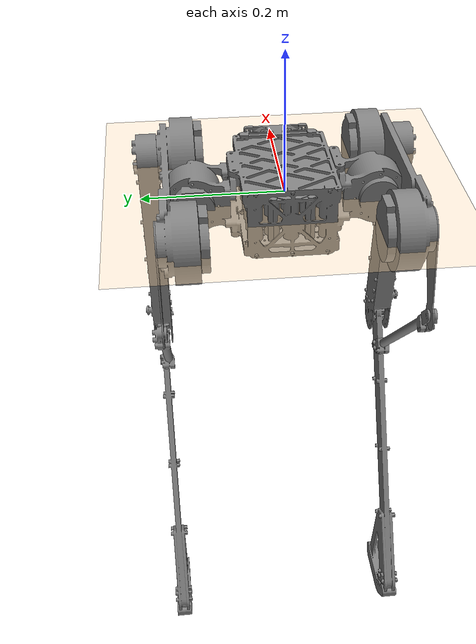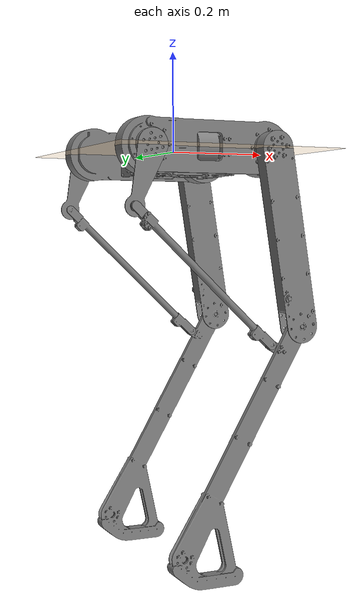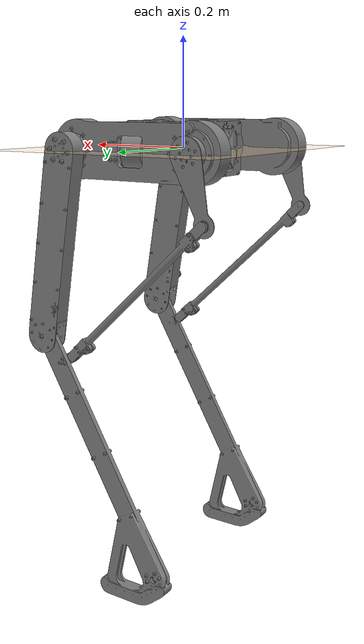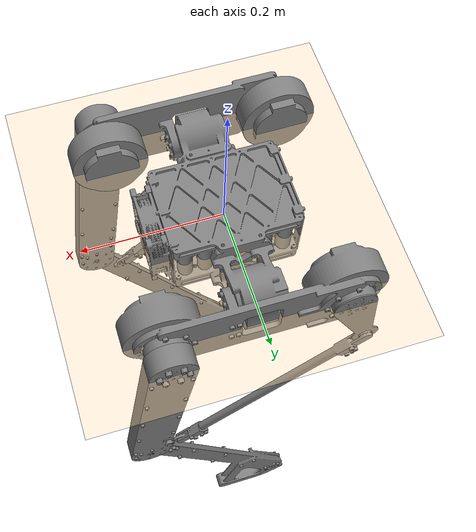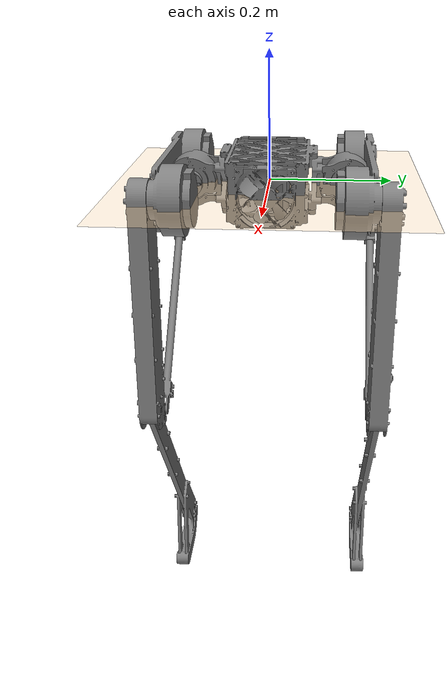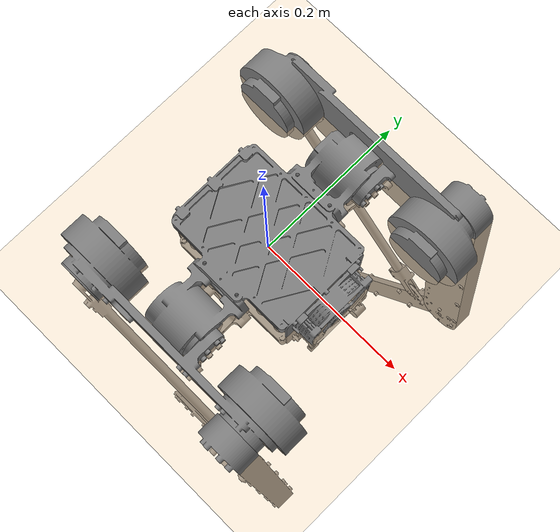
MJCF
<mujoco model="dash01">
    <compiler angle="radian" />
    <asset>
        <mesh name="bodyNCS-v1" file="meshes/bodyNCS-v1.stl" scale="0.001 0.001 0.001" />
        <mesh name="HipLeftNCS-v1" file="meshes/HipLeftNCS-v1.stl" scale="0.001 0.001 0.001" />
        <mesh name="HipRightNCS-v1" file="meshes/HipRightNCS-v1.stl" scale="0.001 0.001 0.001" />
        <mesh name="CamLeftNCS-v1" file="meshes/CamLeftNCS-v1.stl" scale="0.001 0.001 0.001" />
        <mesh name="CamRightNCS-v1" file="meshes/CamRightNCS-v1.stl" scale="0.001 0.001 0.001" />
        <mesh name="ThighLeftNCS-v1" file="meshes/ThighLeftNCS-v1.stl" scale="0.001 0.001 0.001" />
        <mesh name="ThighRightNCS-v1" file="meshes/ThighRightNCS-v1.stl" scale="0.001 0.001 0.001" />
        <mesh name="PushrodLeftNCS-v1" file="meshes/PushrodLeftNCS-v1.stl" scale="0.001 0.001 0.001" />
        <mesh name="PushrodRightNCS-v1" file="meshes/PushrodRightNCS-v1.stl" scale="0.001 0.001 0.001" />
        <mesh name="FootFlatLeftNCS-v1" file="meshes/FootFlatLeftNCS-v1.stl" scale="0.001 0.001 0.001" />
        <mesh name="FootFlatRightNCS-v1" file="meshes/FootFlatRightNCS-v1.stl" scale="0.001 0.001 0.001" />
    </asset>
    <worldbody>
        <light directional="true" pos="-0.5 0.5 3" dir="0 0 -1" />
        <geom pos="0 0 0" size="1 1 1" type="plane" rgba="1 0.83 0.61 0.5" />
        <body name="bodyNCS-v1" pos="0.0 0.0 0.0" euler="-0.0 0.0 -0.0">
            <geom name="bodyNCS-v1_geom" type="mesh" mesh="bodyNCS-v1" pos="0 0 0" euler="0 0 0" />
            <inertial mass="1.8141006934908845" pos="0.0016690918854414011 4.297697354650468e-07 9.498539066587414e-06" fullinertia="0.012823544204434234 0.004661054292120578 0.015210658991172597 8.889789342507086e-08 1.4632265547397721e-06 5.980362454802101e-07" />
            <body name="HipLeftNCS-v1" pos="0.027294924660796353 0.12800000000861275 2.943479682215866e-11" euler="1.3877787807814452e-16 -1.4966300947946358e-15 -2.2837196633848203e-15">
                <joint name="bodyNCS-v1_Révolution-1" type="hinge" axis="1.0 2.2837196633848203e-15 -1.4966300947946364e-15" pos="7.533920364649616e-08 -8.612749402386916e-12 -2.943479682227143e-11" />
                <geom name="HipLeftNCS-v1_geom" type="mesh" mesh="HipLeftNCS-v1" pos="0 0 0" euler="0 0 0" />
                <inertial mass="1.0501006524075551" pos="-0.023170080111601363 0.01601844798341781 0.00019232179773001414" fullinertia="0.0010261889666255152 0.015466200097397598 0.015060127267031861 0.00032793131342943903 3.2969505953295807e-07 5.665805698538165e-06" />
                <body name="CamLeftNCS-v1" pos="-0.14899999999999997 0.051900000000000585 -2.9692362349778064e-17" euler="-3.141592653589791 1.2637256437117026 3.141592653589791">
                    <joint name="HipLeftNCS-v1_Révolution-3" type="hinge" axis="8.442398806833406e-16 1.0 -1.384922129302145e-15" pos="-2.2744545906035046e-08 -8.613720847586835e-12 7.182396593096851e-08" />
                    <geom name="CamLeftNCS-v1_geom" type="mesh" mesh="CamLeftNCS-v1" pos="0 0 0" euler="0 0 0" />
                    <inertial mass="0.013438060017115797" pos="0.04624089887284015 0.0010000000000000106 3.122502256758253e-17" fullinertia="2.451235110088362e-06 3.0927316469863374e-05 2.848504006645299e-05 7.654681673523038e-21 2.202285662861181e-20 4.829196494560722e-20" />
                    <body name="PushrodLeftNCS-v1" pos="0.12000000000000109 0.0019999999999999575 -3.552713678800501e-17" euler="3.1415926535897922 -0.44814693397087935 3.141592653589793">
                        <joint name="CamLeftNCS-v1_Révolution-11" type="hinge" axis="1.2680072561969134e-15 -1.0 -2.4814660532970355e-17" pos="-3.428169663609077e-08 -8.613776358892841e-12 -2.9693985685929334e-07" />
                        <geom name="PushrodLeftNCS-v1_geom" type="mesh" mesh="PushrodLeftNCS-v1" pos="0 0 0" euler="0 0 0" />
                        <inertial mass="0.045198290927437025" pos="-0.0014465158232321168 0.0009770750294905667 -0.19135709372461385" fullinertia="0.000997174346450947 0.0009977072590840927 2.7437611486139896e-06 -5.985238375478231e-08 -2.0612523046563674e-07 2.19018885674067e-08" />
                        <body name="FootFlatLeftNCS-v1" pos="0.0659730269693266 0.0071999999999946595 -0.4073455638372978" euler="2.447097525032615e-15 -0.23161884145577402 1.38338296006317e-15">
                            <joint name="ThighLeftNCS-v1_Révolution-16" type="hinge" axis="-4.068068599498361e-16 1.0 -2.0665229458533544e-15" pos="3.016606813451605e-08 0.009999999991391673 3.1468257584779293e-07" />
                            <geom name="FootFlatLeftNCS-v1_geom" type="mesh" mesh="FootFlatLeftNCS-v1" pos="0 0 0" euler="0 0 0" />
                            <inertial mass="0.40480619575285565" pos="-0.34980445152443046 -9.121449945617505e-05 -0.018851679967998247" fullinertia="0.0005642805875224437 0.011988532191555379 0.01144960842872585 8.251728556646676e-06 -0.0011145682371683817 1.2513472421589062e-06" />
                        </body>
                    </body>
                </body>
                <body name="ThighLeftNCS-v1" pos="0.10100000000000037 0.04610000000000028 -5.890610538771576e-15" euler="2.707049234178895e-15 -0.15937768346432818 2.3369286952204067e-15">
                    <joint name="HipLeftNCS-v1_Révolution-5" type="hinge" axis="-3.694912494065916e-16 1.0 -2.447324771482713e-15" pos="7.437970158875239e-08 -8.612832669287658e-12 -1.1985674518978102e-08" />
                    <geom name="ThighLeftNCS-v1_geom" type="mesh" mesh="ThighLeftNCS-v1" pos="0 0 0" euler="0 0 0" />
                    <inertial mass="0.3669710179821286" pos="0.0009733420828806905 0.014982943361960441 -0.14111184177465913" fullinertia="0.005373722207071402 0.005523505431308974 0.00022576002275626877 6.739471820308809e-07 7.138676799727092e-05 6.501506690886136e-06" />
                    <body name="FootFlatLeftNCS-v1" pos="-2.3092638912203257e-16 0.014999999999994636 -0.34999999999999726" euler="1.281274698429236e-15 -0.8878198677322693 2.7186468198664694e-15">
                        <joint name="ThighLeftNCS-v1_Révolution-16" type="hinge" axis="-4.068068599498361e-16 1.0 -2.0665229458533544e-15" pos="3.016606813451605e-08 0.009999999991391673 3.1468257584779293e-07" />
                        <geom name="FootFlatLeftNCS-v1_geom" type="mesh" mesh="FootFlatLeftNCS-v1" pos="0 0 0" euler="0 0 0" />
                        <inertial mass="0.40480619575285565" pos="-0.34980445152443046 -9.121449945617505e-05 -0.018851679967998247" fullinertia="0.0005642805875224437 0.011988532191555379 0.01144960842872585 8.251728556646676e-06 -0.0011145682371683817 1.2513472421589062e-06" />
                    </body>
                </body>
            </body>
            <body name="HipRightNCS-v1" pos="0.027294924660796194 -0.12800000000861297 -2.943457144688466e-11" euler="-9.020562075079399e-17 -9.690022339013459e-16 2.685531099173177e-16">
                <joint name="bodyNCS-v1_Révolution-2" type="hinge" axis="1.0 -2.685531099173177e-16 -9.690022339013457e-16" pos="7.533920380609072e-08 8.61297144714365e-12 2.943457144681165e-11" />
                <geom name="HipRightNCS-v1_geom" type="mesh" mesh="HipRightNCS-v1" pos="0 0 0" euler="0 0 0" />
                <inertial mass="1.0500114425905998" pos="-0.023158859460218346 -0.016016913267582217 0.0001934139862113593" fullinertia="0.0010260381076138345 0.015464526431425244 0.015058544614084887 -0.0003277184725226477 4.716969465181986e-07 -5.645088300916073e-06" />
                <body name="CamRightNCS-v1" pos="-0.149 -0.05190000000000357 -9.462343275658146e-18" euler="3.1415926535897913 1.265316758270581 -3.1415926535897927">
                    <joint name="HipRightNCS-v1_Révolution-4" type="hinge" axis="1.2988276135382325e-15 -1.0 2.8691999777179723e-16" pos="-2.26863808848306e-08 8.61655191640945e-12 7.184235948794946e-08" />
                    <geom name="CamRightNCS-v1_geom" type="mesh" mesh="CamRightNCS-v1" pos="0 0 0" euler="0 0 0" />
                    <inertial mass="0.01343806001711578" pos="0.046240898872842245 -0.0009999999999999896 6.140921104957897e-16" fullinertia="2.4512351100881986e-06 3.092731646986213e-05 2.848504006645191e-05 -3.6985520795435535e-20 6.448038310973361e-19 -7.007379402237369e-22" />
                    <body name="PushrodRightNCS-v1" pos="0.12000000000000118 -0.0019999999999999575 -5.329070518200751e-17" euler="-3.1415926535897825 -0.449376430824731 -3.141592653589789">
                        <joint name="CamRightNCS-v1_Révolution-12" type="hinge" axis="-5.272596550528635e-16 -1.0 -1.0463872501797505e-14" pos="3.464785488979282e-07 8.616690692777845e-12 1.2766311512687134e-07" />
                        <geom name="PushrodRightNCS-v1_geom" type="mesh" mesh="PushrodRightNCS-v1" pos="0 0 0" euler="0 0 0" />
                        <inertial mass="0.04519829092743693" pos="-0.0014470160711917007 -0.0005227074404326835 -0.19135653035872233" fullinertia="0.000997174867720915 0.0009976974932357592 2.754001731670557e-06 1.5073202827765404e-09 -2.1066318878638478e-07 3.390059863913196e-06" />
                    </body>
                </body>
                <body name="ThighRightNCS-v1" pos="0.10100000000000028 -0.04609999999999861 -1.6132278674730357e-15" euler="-2.829230146625658e-16 -0.16018352276224523 -8.390407534103228e-16">
                    <joint name="HipRightNCS-v1_Révolution-6" type="hinge" axis="5.144118658421468e-16 -1.0 -3.255177979280818e-16" pos="7.437940816794008e-08 8.611528157274037e-12 -1.1987497199611713e-08" />
                    <geom name="ThighRightNCS-v1_geom" type="mesh" mesh="ThighRightNCS-v1" pos="0 0 0" euler="0 0 0" />
                    <inertial mass="0.36647662097327144" pos="0.0009430110630470161 -0.015029284942483255 -0.14160752239628077" fullinertia="0.005370520434600625 0.00551992879529248 0.00022527180210302889 -5.426703502543668e-07 6.953833720502731e-05 -7.143303316834403e-06" />
                    <body name="FootFlatRightNCS-v1" pos="2.6645352591003756e-16 -0.015000000000005046 -0.3499999999999971" euler="9.553818297293955e-16 -0.8870140284343525 8.834397212205721e-16">
                        <joint name="ThighRightNCS-v1_Révolution-17" type="hinge" axis="-7.020696111188695e-17 -1.0 -8.62648372751857e-19" pos="4.1410400874759765e-07 -0.009999999991383318 -9.742705436961765e-08" />
                        <geom name="FootFlatRightNCS-v1_geom" type="mesh" mesh="FootFlatRightNCS-v1" pos="0 0 0" euler="0 0 0" />
                        <inertial mass="0.4048061957528556" pos="-0.34980445152445366 3.0125382213117706e-05 -0.01885167996800119" fullinertia="0.0005642835881900932 0.011988532191576362 0.011449611429368494 -5.983121530807768e-06 -0.001114568237184152 -7.851587892341297e-07" />
                        <body name="PushrodRightNCS-v1" pos="0.0291593677679802 0.007199999999999953 0.41164443365669484" euler="-1.0732655221371867e-14 0.23125722375074761 2.9190596349093885e-15">
                            <joint name="CamRightNCS-v1_Révolution-12" type="hinge" axis="-5.272596550528635e-16 -1.0 -1.0463872501797505e-14" pos="3.464785488979282e-07 8.616690692777845e-12 1.2766311512687134e-07" />
                            <geom name="PushrodRightNCS-v1_geom" type="mesh" mesh="PushrodRightNCS-v1" pos="0 0 0" euler="0 0 0" />
                            <inertial mass="0.04519829092743693" pos="-0.0014470160711917007 -0.0005227074404326835 -0.19135653035872233" fullinertia="0.000997174867720915 0.0009976974932357592 2.754001731670557e-06 1.5073202827765404e-09 -2.1066318878638478e-07 3.390059863913196e-06" />
                        </body>
                    </body>
                </body>
            </body>
        </body>
    </worldbody>
</mujoco>
